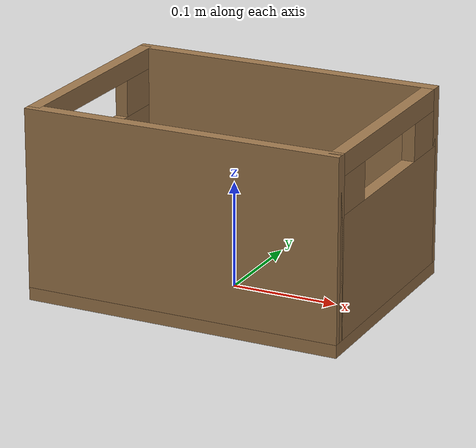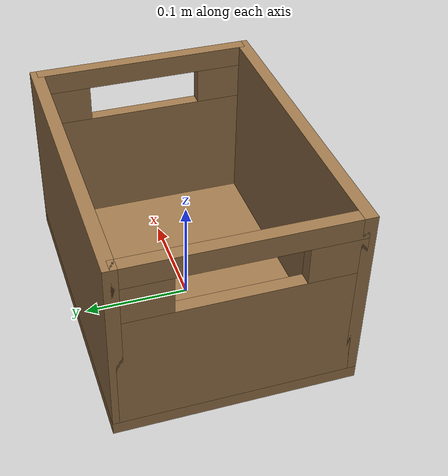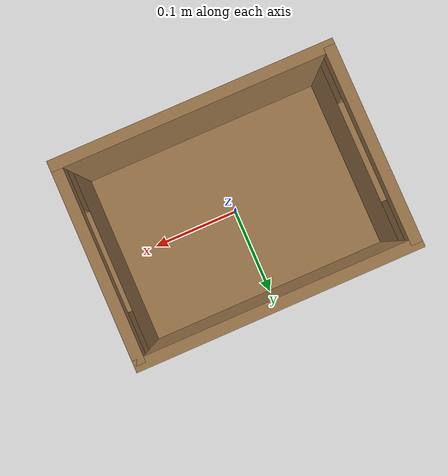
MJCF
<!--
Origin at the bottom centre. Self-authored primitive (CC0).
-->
<mujoco model="crate">
  <asset>
    <material name="mat" rgba="0.62 0.47 0.30 1"/>
  </asset>
  <worldbody>
    <body name="crate">
      <freejoint/>
      <geom name="bottom" type="box" size="0.15 0.11 0.006" pos="0 0 0.006" mass="0.30"
            material="mat" condim="4" friction="0.9 0.02 0.0005" solimp="0.95 0.99 0.001" solref="0.008 1"/>
      <geom name="wall_py" type="box" size="0.15 0.006 0.084" pos="0 0.104 0.096" mass="0.25"
            material="mat" condim="4" friction="0.9 0.02 0.0005" solimp="0.95 0.99 0.001" solref="0.008 1"/>
      <geom name="wall_ny" type="box" size="0.15 0.006 0.084" pos="0 -0.104 0.096" mass="0.25"
            material="mat" condim="4" friction="0.9 0.02 0.0005" solimp="0.95 0.99 0.001" solref="0.008 1"/>
      <!-- +x short wall: lower panel / two posts / top rail leave a 110 x 35 mm handle hole -->
      <geom name="wall_px_low" type="box" size="0.006 0.104 0.0565" pos="0.144 0 0.0685" mass="0.13"
            material="mat" condim="4" friction="0.9 0.02 0.0005" solimp="0.95 0.99 0.001" solref="0.008 1"/>
      <geom name="wall_px_post_py" type="box" size="0.006 0.0245 0.0175" pos="0.144 0.0795 0.1425" mass="0.015"
            material="mat" condim="4" friction="0.9 0.02 0.0005"/>
      <geom name="wall_px_post_ny" type="box" size="0.006 0.0245 0.0175" pos="0.144 -0.0795 0.1425" mass="0.015"
            material="mat" condim="4" friction="0.9 0.02 0.0005"/>
      <geom name="wall_px_rail" type="box" size="0.006 0.104 0.010" pos="0.144 0 0.170" mass="0.04"
            material="mat" condim="4" friction="0.9 0.02 0.0005"/>
      <!-- -x short wall -->
      <geom name="wall_nx_low" type="box" size="0.006 0.104 0.0565" pos="-0.144 0 0.0685" mass="0.13"
            material="mat" condim="4" friction="0.9 0.02 0.0005" solimp="0.95 0.99 0.001" solref="0.008 1"/>
      <geom name="wall_nx_post_py" type="box" size="0.006 0.0245 0.0175" pos="-0.144 0.0795 0.1425" mass="0.015"
            material="mat" condim="4" friction="0.9 0.02 0.0005"/>
      <geom name="wall_nx_post_ny" type="box" size="0.006 0.0245 0.0175" pos="-0.144 -0.0795 0.1425" mass="0.015"
            material="mat" condim="4" friction="0.9 0.02 0.0005"/>
      <geom name="wall_nx_rail" type="box" size="0.006 0.104 0.010" pos="-0.144 0 0.170" mass="0.04"
            material="mat" condim="4" friction="0.9 0.02 0.0005"/>
    </body>
  </worldbody>
</mujoco>
